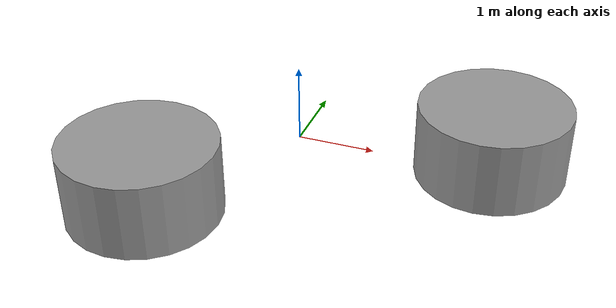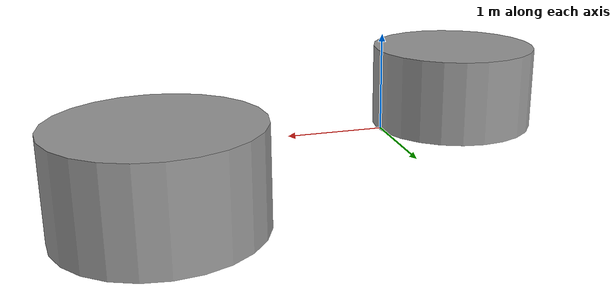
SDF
<?xml version='1.0'?>
<sdf version='1.6'>
  <model name='unit_cylinder2'>
    <link name='link'>
      <inertial>
        <mass>1</mass>
        <inertia>
          <ixx>0.145833</ixx>
          <ixy>0</ixy>
          <ixz>0</ixz>
          <iyy>0.145833</iyy>
          <iyz>0</iyz>
          <izz>0.125</izz>
        </inertia>
        <pose frame=''>0 0 0 0 -0 0</pose>
      </inertial>
      <self_collide>0</self_collide>
      <enable_wind>0</enable_wind>
      <kinematic>0</kinematic>
      <pose frame=''>0 0 0 0 -0 0</pose>
      <gravity>1</gravity>
      <visual name='visual'>
        <geometry>
          <cylinder>
            <radius>1</radius>
            <length>1</length>
          </cylinder>
        </geometry>
        <material>
          <script>
            <name>Gazebo/Grey</name>
            <uri>file://media/materials/scripts/gazebo.material</uri>
          </script>
          <shader type='vertex'>
            <normal_map>__default__</normal_map>
          </shader>
          <ambient>0.3 0.3 0.3 1</ambient>
          <diffuse>0.7 0.7 0.7 1</diffuse>
          <specular>0.01 0.01 0.01 1</specular>
          <emissive>0 0 0 1</emissive>
        </material>
        <pose frame=''>-1.5 -1.5 0 0 -0 0</pose>
        <transparency>0</transparency>
        <cast_shadows>1</cast_shadows>
      </visual>
      <collision name='collision'>
        <laser_retro>0</laser_retro>
        <max_contacts>10</max_contacts>
        <pose frame=''>-1.5 -1.5 0 0 -0 0</pose>
        <geometry>
          <cylinder>
            <radius>1</radius>
            <length>1</length>
          </cylinder>
        </geometry>
        <surface>
          <friction>
            <ode>
              <mu>1</mu>
              <mu2>1</mu2>
              <fdir1>0 0 0</fdir1>
              <slip1>0</slip1>
              <slip2>0</slip2>
            </ode>
            <torsional>
              <coefficient>1</coefficient>
              <patch_radius>0</patch_radius>
              <surface_radius>0</surface_radius>
              <use_patch_radius>1</use_patch_radius>
              <ode>
                <slip>0</slip>
              </ode>
            </torsional>
          </friction>
          <bounce>
            <restitution_coefficient>0</restitution_coefficient>
            <threshold>1e+06</threshold>
          </bounce>
          <contact>
            <collide_without_contact>0</collide_without_contact>
            <collide_without_contact_bitmask>1</collide_without_contact_bitmask>
            <collide_bitmask>1</collide_bitmask>
            <ode>
              <soft_cfm>0</soft_cfm>
              <soft_erp>0.2</soft_erp>
              <kp>1e+13</kp>
              <kd>1</kd>
              <max_vel>0.01</max_vel>
              <min_depth>0</min_depth>
            </ode>
            <bullet>
              <split_impulse>1</split_impulse>
              <split_impulse_penetration_threshold>-0.01</split_impulse_penetration_threshold>
              <soft_cfm>0</soft_cfm>
              <soft_erp>0.2</soft_erp>
              <kp>1e+13</kp>
              <kd>1</kd>
            </bullet>
          </contact>
        </surface>
      </collision>
    </link>
    <link name='link_clone'>
      <inertial>
        <mass>1</mass>
        <inertia>
          <ixx>0.145833</ixx>
          <ixy>0</ixy>
          <ixz>0</ixz>
          <iyy>0.145833</iyy>
          <iyz>0</iyz>
          <izz>0.125</izz>
        </inertia>
        <pose frame=''>0 0 0 0 -0 0</pose>
      </inertial>
      <self_collide>0</self_collide>
      <enable_wind>0</enable_wind>
      <kinematic>0</kinematic>
      <pose frame=''>0.872445 2.30867 4e-06 3e-06 4e-06 -0</pose>
      <gravity>1</gravity>
      <visual name='visual'>
        <geometry>
          <cylinder>
            <radius>1</radius>
            <length>1</length>
          </cylinder>
        </geometry>
        <material>
          <script>
            <name>Gazebo/Grey</name>
            <uri>file://media/materials/scripts/gazebo.material</uri>
          </script>
          <shader type='vertex'>
            <normal_map>__default__</normal_map>
          </shader>
          <ambient>0.3 0.3 0.3 1</ambient>
          <diffuse>0.7 0.7 0.7 1</diffuse>
          <specular>0.01 0.01 0.01 1</specular>
          <emissive>0 0 0 1</emissive>
        </material>
        <pose frame=''>1.5 -1.5 0 0 -0 0</pose>
        <transparency>0</transparency>
        <cast_shadows>1</cast_shadows>
      </visual>
      <collision name='collision'>
        <laser_retro>0</laser_retro>
        <max_contacts>10</max_contacts>
        <pose frame=''>1.5 -1.5 0 0 -0 0</pose>
        <geometry>
          <cylinder>
            <radius>1</radius>
            <length>1</length>
          </cylinder>
        </geometry>
        <surface>
          <friction>
            <ode>
              <mu>1</mu>
              <mu2>1</mu2>
              <fdir1>0 0 0</fdir1>
              <slip1>0</slip1>
              <slip2>0</slip2>
            </ode>
            <torsional>
              <coefficient>1</coefficient>
              <patch_radius>0</patch_radius>
              <surface_radius>0</surface_radius>
              <use_patch_radius>1</use_patch_radius>
              <ode>
                <slip>0</slip>
              </ode>
            </torsional>
          </friction>
          <bounce>
            <restitution_coefficient>0</restitution_coefficient>
            <threshold>1e+06</threshold>
          </bounce>
          <contact>
            <collide_without_contact>0</collide_without_contact>
            <collide_without_contact_bitmask>1</collide_without_contact_bitmask>
            <collide_bitmask>1</collide_bitmask>
            <ode>
              <soft_cfm>0</soft_cfm>
              <soft_erp>0.2</soft_erp>
              <kp>1e+13</kp>
              <kd>1</kd>
              <max_vel>0.01</max_vel>
              <min_depth>0</min_depth>
            </ode>
            <bullet>
              <split_impulse>1</split_impulse>
              <split_impulse_penetration_threshold>-0.01</split_impulse_penetration_threshold>
              <soft_cfm>0</soft_cfm>
              <soft_erp>0.2</soft_erp>
              <kp>1e+13</kp>
              <kd>1</kd>
            </bullet>
          </contact>
        </surface>
      </collision>
    </link>
    <static>0</static>
    <allow_auto_disable>1</allow_auto_disable>
  </model>
</sdf>
